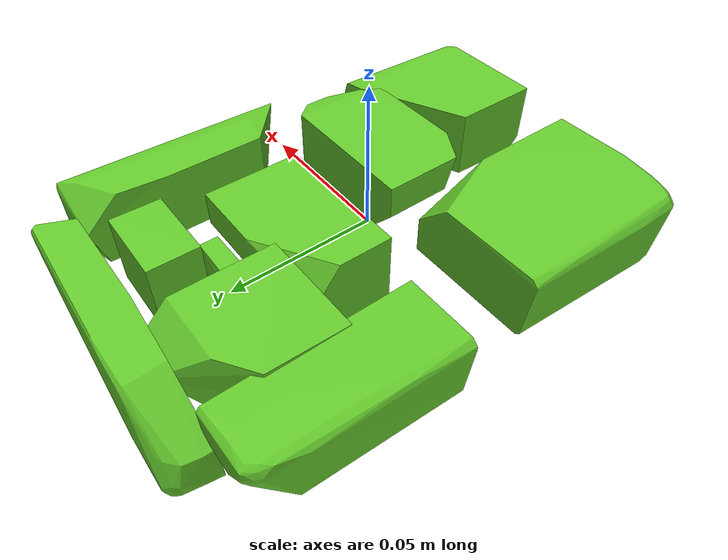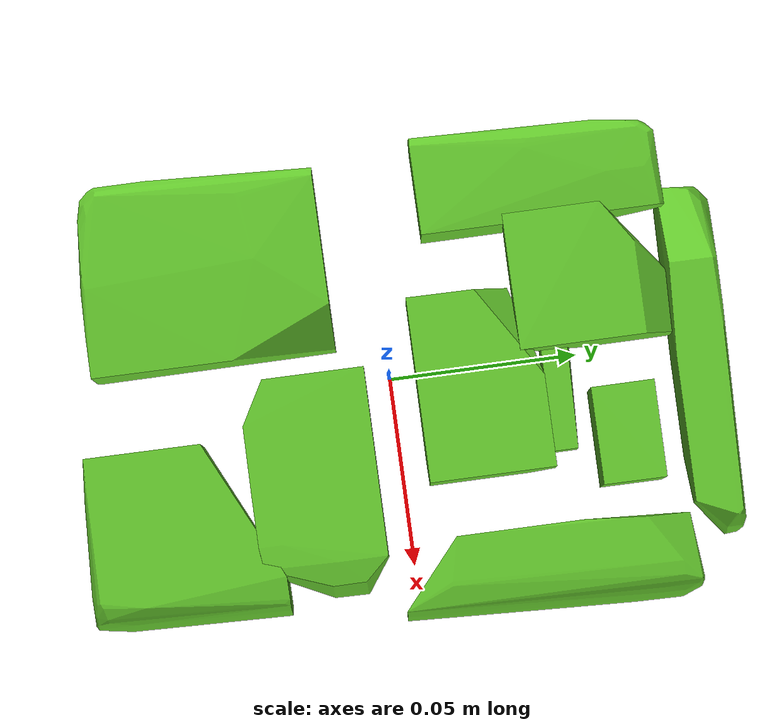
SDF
<?xml version='1.0' encoding='UTF-8'?>
<!-- This SDF was autogenerated by obj_to_drake_sdf.py -->
<sdf version="1.7">
  <model name="book">
    <link name="book">
      <inertial>
        <pose>0 0 0 0 0 0</pose>
        <mass>0.05</mass>
        <inertia>
          <ixx>0.00014781244</ixx>
          <iyy>7.9786603e-05</iyy>
          <izz>0.00021689782</izz>
          <ixy>-3.2078365e-06</ixy>
          <ixz>3.2602427e-07</ixz>
          <iyz>-6.2366726e-07</iyz>
        </inertia>
      </inertial>
      <visual name="convex_0">
        <pose>0 0 0 0 0 0</pose>
        <geometry>
          <mesh>
            <uri>book_convex_0.obj</uri>
          </mesh>
        </geometry>
        <material>
          <diffuse>0.39215686274509803 0.7843137254901961 0.17254901960784313 1</diffuse>
        </material>
      </visual>
      <collision name="convex_0_volume">
        <pose>0 0 0 0 0 0</pose>
        <geometry>
          <mesh>
            <uri>book_convex_0.obj</uri>
          </mesh>
        </geometry>
        <drake:proximity_properties xmlns:drake="uri:drake">
          <drake:compliant_hydroelastic/>
          <drake:hydroelastic_modulus> 3.0e7 </drake:hydroelastic_modulus>
          <drake:mesh_resolution_hint> 0.02 </drake:mesh_resolution_hint>
          <drake:hunt_crossley_dissipation>10</drake:hunt_crossley_dissipation>
          <drake:mu_dynamic>0.3</drake:mu_dynamic>
        </drake:proximity_properties>
      </collision>
      <visual name="convex_1">
        <pose>0 0 0 0 0 0</pose>
        <geometry>
          <mesh>
            <uri>book_convex_1.obj</uri>
          </mesh>
        </geometry>
        <material>
          <diffuse>0.39215686274509803 0.7843137254901961 0.17254901960784313 1</diffuse>
        </material>
      </visual>
      <collision name="convex_1_volume">
        <pose>0 0 0 0 0 0</pose>
        <geometry>
          <mesh>
            <uri>book_convex_1.obj</uri>
          </mesh>
        </geometry>
        <drake:proximity_properties xmlns:drake="uri:drake">
          <drake:compliant_hydroelastic/>
          <drake:hydroelastic_modulus> 3.0e7 </drake:hydroelastic_modulus>
          <drake:mesh_resolution_hint> 0.02 </drake:mesh_resolution_hint>
          <drake:hunt_crossley_dissipation>10</drake:hunt_crossley_dissipation>
          <drake:mu_dynamic>0.3</drake:mu_dynamic>
        </drake:proximity_properties>
      </collision>
      <visual name="convex_2">
        <pose>0 0 0 0 0 0</pose>
        <geometry>
          <mesh>
            <uri>book_convex_2.obj</uri>
          </mesh>
        </geometry>
        <material>
          <diffuse>0.39215686274509803 0.7843137254901961 0.17254901960784313 1</diffuse>
        </material>
      </visual>
      <collision name="convex_2_volume">
        <pose>0 0 0 0 0 0</pose>
        <geometry>
          <mesh>
            <uri>book_convex_2.obj</uri>
          </mesh>
        </geometry>
        <drake:proximity_properties xmlns:drake="uri:drake">
          <drake:compliant_hydroelastic/>
          <drake:hydroelastic_modulus> 3.0e7 </drake:hydroelastic_modulus>
          <drake:mesh_resolution_hint> 0.02 </drake:mesh_resolution_hint>
          <drake:hunt_crossley_dissipation>10</drake:hunt_crossley_dissipation>
          <drake:mu_dynamic>0.3</drake:mu_dynamic>
        </drake:proximity_properties>
      </collision>
      <visual name="convex_3">
        <pose>0 0 0 0 0 0</pose>
        <geometry>
          <mesh>
            <uri>book_convex_3.obj</uri>
          </mesh>
        </geometry>
        <material>
          <diffuse>0.39215686274509803 0.7843137254901961 0.17254901960784313 1</diffuse>
        </material>
      </visual>
      <collision name="convex_3_volume">
        <pose>0 0 0 0 0 0</pose>
        <geometry>
          <mesh>
            <uri>book_convex_3.obj</uri>
          </mesh>
        </geometry>
        <drake:proximity_properties xmlns:drake="uri:drake">
          <drake:compliant_hydroelastic/>
          <drake:hydroelastic_modulus> 3.0e7 </drake:hydroelastic_modulus>
          <drake:mesh_resolution_hint> 0.02 </drake:mesh_resolution_hint>
          <drake:hunt_crossley_dissipation>10</drake:hunt_crossley_dissipation>
          <drake:mu_dynamic>0.3</drake:mu_dynamic>
        </drake:proximity_properties>
      </collision>
      <visual name="convex_4">
        <pose>0 0 0 0 0 0</pose>
        <geometry>
          <mesh>
            <uri>book_convex_4.obj</uri>
          </mesh>
        </geometry>
        <material>
          <diffuse>0.39215686274509803 0.7843137254901961 0.17254901960784313 1</diffuse>
        </material>
      </visual>
      <collision name="convex_4_volume">
        <pose>0 0 0 0 0 0</pose>
        <geometry>
          <mesh>
            <uri>book_convex_4.obj</uri>
          </mesh>
        </geometry>
        <drake:proximity_properties xmlns:drake="uri:drake">
          <drake:compliant_hydroelastic/>
          <drake:hydroelastic_modulus> 3.0e7 </drake:hydroelastic_modulus>
          <drake:mesh_resolution_hint> 0.02 </drake:mesh_resolution_hint>
          <drake:hunt_crossley_dissipation>10</drake:hunt_crossley_dissipation>
          <drake:mu_dynamic>0.3</drake:mu_dynamic>
        </drake:proximity_properties>
      </collision>
      <visual name="convex_5">
        <pose>0 0 0 0 0 0</pose>
        <geometry>
          <mesh>
            <uri>book_convex_5.obj</uri>
          </mesh>
        </geometry>
        <material>
          <diffuse>0.39215686274509803 0.7843137254901961 0.17254901960784313 1</diffuse>
        </material>
      </visual>
      <collision name="convex_5_volume">
        <pose>0 0 0 0 0 0</pose>
        <geometry>
          <mesh>
            <uri>book_convex_5.obj</uri>
          </mesh>
        </geometry>
        <drake:proximity_properties xmlns:drake="uri:drake">
          <drake:compliant_hydroelastic/>
          <drake:hydroelastic_modulus> 3.0e7 </drake:hydroelastic_modulus>
          <drake:mesh_resolution_hint> 0.02 </drake:mesh_resolution_hint>
          <drake:hunt_crossley_dissipation>10</drake:hunt_crossley_dissipation>
          <drake:mu_dynamic>0.3</drake:mu_dynamic>
        </drake:proximity_properties>
      </collision>
      <visual name="convex_6">
        <pose>0 0 0 0 0 0</pose>
        <geometry>
          <mesh>
            <uri>book_convex_6.obj</uri>
          </mesh>
        </geometry>
        <material>
          <diffuse>0.39215686274509803 0.7843137254901961 0.17254901960784313 1</diffuse>
        </material>
      </visual>
      <collision name="convex_6_volume">
        <pose>0 0 0 0 0 0</pose>
        <geometry>
          <mesh>
            <uri>book_convex_6.obj</uri>
          </mesh>
        </geometry>
        <drake:proximity_properties xmlns:drake="uri:drake">
          <drake:compliant_hydroelastic/>
          <drake:hydroelastic_modulus> 3.0e7 </drake:hydroelastic_modulus>
          <drake:mesh_resolution_hint> 0.02 </drake:mesh_resolution_hint>
          <drake:hunt_crossley_dissipation>10</drake:hunt_crossley_dissipation>
          <drake:mu_dynamic>0.3</drake:mu_dynamic>
        </drake:proximity_properties>
      </collision>
      <visual name="convex_7">
        <pose>0 0 0 0 0 0</pose>
        <geometry>
          <mesh>
            <uri>book_convex_7.obj</uri>
          </mesh>
        </geometry>
        <material>
          <diffuse>0.39215686274509803 0.7843137254901961 0.17254901960784313 1</diffuse>
        </material>
      </visual>
      <collision name="convex_7_volume">
        <pose>0 0 0 0 0 0</pose>
        <geometry>
          <mesh>
            <uri>book_convex_7.obj</uri>
          </mesh>
        </geometry>
        <drake:proximity_properties xmlns:drake="uri:drake">
          <drake:compliant_hydroelastic/>
          <drake:hydroelastic_modulus> 3.0e7 </drake:hydroelastic_modulus>
          <drake:mesh_resolution_hint> 0.02 </drake:mesh_resolution_hint>
          <drake:hunt_crossley_dissipation>10</drake:hunt_crossley_dissipation>
          <drake:mu_dynamic>0.3</drake:mu_dynamic>
        </drake:proximity_properties>
      </collision>
      <visual name="convex_8">
        <pose>0 0 0 0 0 0</pose>
        <geometry>
          <mesh>
            <uri>book_convex_8.obj</uri>
          </mesh>
        </geometry>
        <material>
          <diffuse>0.39215686274509803 0.7843137254901961 0.17254901960784313 1</diffuse>
        </material>
      </visual>
      <collision name="convex_8_volume">
        <pose>0 0 0 0 0 0</pose>
        <geometry>
          <mesh>
            <uri>book_convex_8.obj</uri>
          </mesh>
        </geometry>
        <drake:proximity_properties xmlns:drake="uri:drake">
          <drake:compliant_hydroelastic/>
          <drake:hydroelastic_modulus> 3.0e7 </drake:hydroelastic_modulus>
          <drake:mesh_resolution_hint> 0.02 </drake:mesh_resolution_hint>
          <drake:hunt_crossley_dissipation>10</drake:hunt_crossley_dissipation>
          <drake:mu_dynamic>0.3</drake:mu_dynamic>
        </drake:proximity_properties>
      </collision>
      <visual name="convex_9">
        <pose>0 0 0 0 0 0</pose>
        <geometry>
          <mesh>
            <uri>book_convex_9.obj</uri>
          </mesh>
        </geometry>
        <material>
          <diffuse>0.39215686274509803 0.7843137254901961 0.17254901960784313 1</diffuse>
        </material>
      </visual>
      <collision name="convex_9_volume">
        <pose>0 0 0 0 0 0</pose>
        <geometry>
          <mesh>
            <uri>book_convex_9.obj</uri>
          </mesh>
        </geometry>
        <drake:proximity_properties xmlns:drake="uri:drake">
          <drake:compliant_hydroelastic/>
          <drake:hydroelastic_modulus> 3.0e7 </drake:hydroelastic_modulus>
          <drake:mesh_resolution_hint> 0.02 </drake:mesh_resolution_hint>
          <drake:hunt_crossley_dissipation>10</drake:hunt_crossley_dissipation>
          <drake:mu_dynamic>0.3</drake:mu_dynamic>
        </drake:proximity_properties>
      </collision>
    </link>
  </model>
</sdf>
